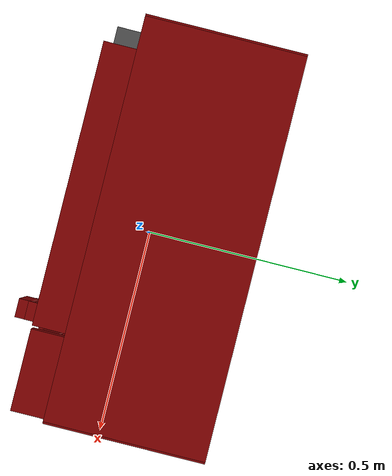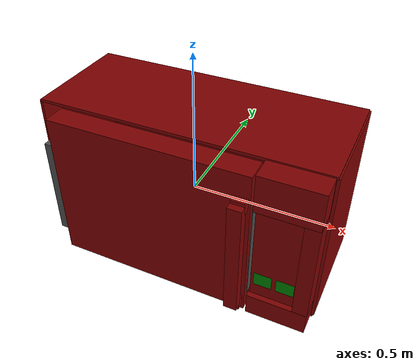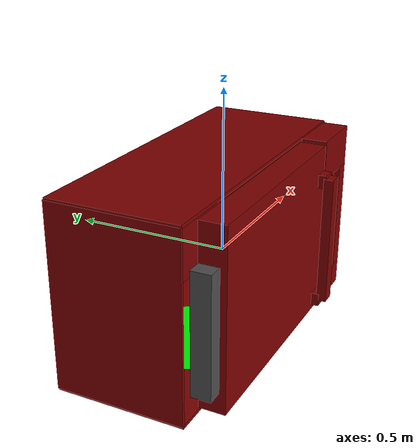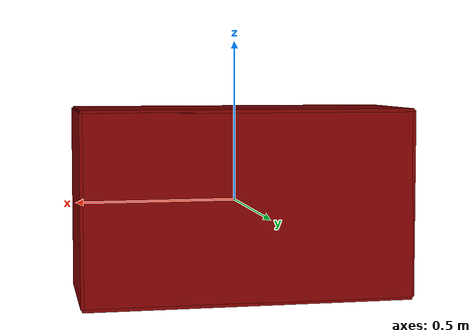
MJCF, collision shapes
<?xml version='1.0' encoding='UTF-8'?>
<mujoco model="model">
  <compiler angle="radian"/>
  <asset>
    <texture file="visuals/material_0.png" name="tex-model" type="2d"/>
    <texture type="2d" name="image0" file="visuals/image0.png"/>
    <material name="model" reflectance="0.5" texrepeat="1 1" texture="tex-model" texuniform="false"/>
    <material name="Baked_Microwave" texture="image0" specular="0.5" shininess="0.25"/>
    <material name="Door_Inside" specular="0.5" shininess="0.25" rgba="0.3059 0.3059 0.3059 1"/>
    <mesh file="visuals/model_0.obj" name="model_0_vis" scale="1 1 1"/>
    <mesh file="visuals/door_0.obj" name="door_0_vis" scale="1 1 1"/>
  </asset>
  <default>
    <default class="visual">
      <geom conaffinity="0" contype="0" group="1" type="mesh"/>
    </default>
    <default class="collision">
      <geom group="0" rgba="0.5 0 0 0.5"/>
    </default>
    <default class="region">
      <geom group="1" conaffinity="0" contype="0" rgba="0 1 0 0"/>
    </default>
  </default>
  <worldbody>
    <body>
      <body name="object">
        <geom solimp="0.998 0.998 0.001" solref="0.001 1" density="100" friction="0.95 0.3 0.1" type="mesh" mesh="model_0_vis" material="Baked_Microwave" class="visual"/>
        <!-- Back Wall -->
        <geom class="collision" type="box" pos="0 0.262 0.005" size="0.5 0.005 0.285"/>
        <!-- Floor -->
        <geom class="collision" type="box" pos="0 0.067 -0.283" size="0.5 0.2 0.005"/>
        <!-- Top -->
        <geom class="collision" type="box" pos="0 0.067 0.29" size="0.5 0.2 0.005"/>
        <!-- Left Wall-->
        <geom class="collision" type="box" pos="-0.5 0.067 0.005" size="0.005 0.2 0.285"/>
        <!-- Right Wall-->
        <geom class="collision" type="box" pos="0.5 0.067 0.005" size="0.005 0.2 0.285"/>
        <!-- Keypad -->
        <geom class="collision" type="box" pos="0.393 -0.174 0.225" size="0.101 0.041 0.065"/>
        <geom class="collision" type="box" pos="0.393 -0.174 -0.24" size="0.101 0.041 0.04"/>
        <geom class="collision" type="box" pos="0.47 -0.174 -0.02" size="0.025 0.041 0.18"/>
        <geom class="collision" type="box" pos="0.37 -0.174 -0.02" size="0.075 0.0215 0.18"/>
        <!-- start/stop buttons -->
        <geom class="collision" type="box" pos="0.41 -0.174 -0.13" size="0.03 0.0216 0.025" name="start_button" rgba="0.0 0.5 0 0.5"/>
        <geom class="collision" type="box" pos="0.335 -0.174 -0.13" size="0.03 0.0216 0.025" name="stop_button" rgba="0.0 0.5 0 0.5"/>
        <geom class="collision" type="cylinder" pos="-0.09 0.07 -0.282" size="0.19 0.005" rgba="0 1 0 0.5" name="tray"/>
        <!-- Bottom gaps fixes -->
        <geom class="visual" type="box" pos="0 -0.095 -0.285" size="0.45 0.008 0.002" axisangle="1 0 0 -0.6"/>
        <geom class="visual" type="box" pos="0 0.227 -0.285" size="0.45 0.009 0.002" axisangle="1 0 0 0.6"/>
        <body name="door">
          <joint axis="0 0 1" limited="true" name="microjoint" range="-1.57 0" damping="2" frictionloss="2" armature=".01" pos="-0.471 -0.178 0"/>
          <geom solimp="0.998 0.998 0.001" solref="0.001 1" density="100" friction="0.95 0.3 0.1" type="mesh" mesh="door_0_vis" material="Baked_Microwave" class="visual"/>
          <!-- Door -->
          <geom class="collision" type="box" pos="-0.067 -0.174 0.005" size="0.351 0.041 0.275" name="door_main"/>
          <!-- Handle Top -->
          <geom class="collision" type="box" pos="0.254 -0.22 0.18" size="0.023 0.02 0.021"/>
          <!-- Handle Bottom -->
          <geom class="collision" type="box" pos="0.254 -0.22 -0.23" size="0.023 0.02 0.021"/>
          <!-- Handle Main -->
          <geom class="collision" type="box" pos="0.254 -0.248 -0.02" size="0.023 0.016 0.21" name="door_handle_main"/>
          <!-- Door inside gap fixes -->
          <geom class="visual" type="box" pos="0.2325 -0.165 -0.022" size="0.054 0.03 0.185" material="Door_Inside"/>
          <geom class="visual" type="box" pos="-0.435 -0.165 -0.022" size="0.03 0.03 0.185" material="Door_Inside"/>
          <geom class="visual" type="box" pos="-0.113 -0.165 -0.185" size="0.293 0.03 0.02" material="Door_Inside"/>
          <geom class="visual" type="box" pos="-0.113 -0.165 0.1125" size="0.293 0.03 0.047" material="Door_Inside"/>
        </body>
        <!-- exterior bounding box points -->
        <geom class="region" name="reg_main" type="box" pos="0.0 0.02750000000000001 0.0015000000000000013" size="0.51 0.2425 0.2915"/>
        <!-- interior bounding box points -->
        <geom class="region" name="reg_int" type="box" pos="-0.0025000000000000022 0.065 0.007499999999999979" size="0.4925 0.195 0.2825"/>
      <geom class="region" name="reg_tray" type="cylinder" pos="-0.09 0.07 0.006499999999999978" size="0.19 0.2825"/></body>
    </body>
  </worldbody>
</mujoco>
